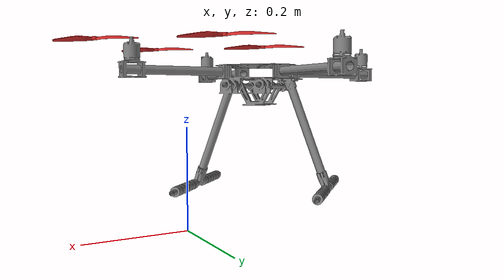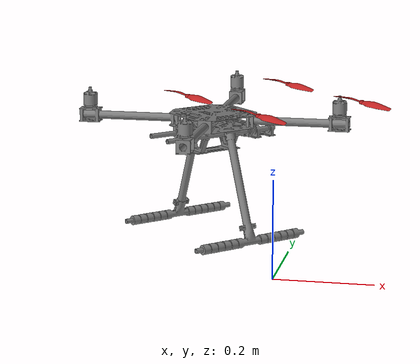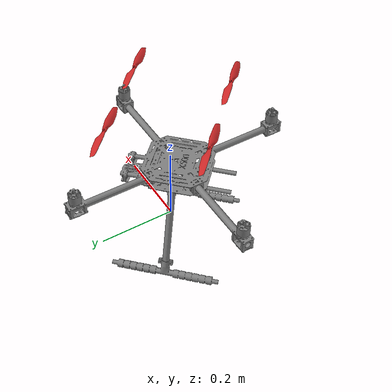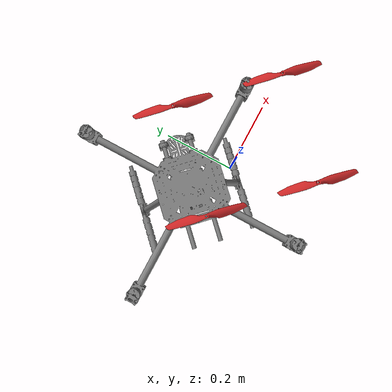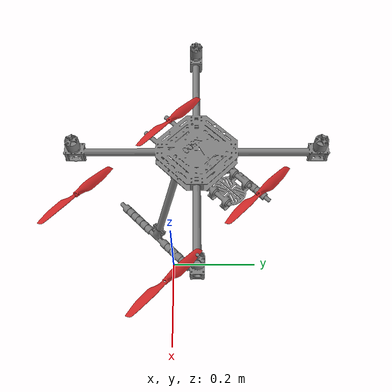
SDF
<?xml version="1.0" encoding="UTF-8"?>
<sdf version='1.9'>
  <model name='x500_base'>
    <pose>0 0 .24 0 0 0.785398</pose>
    <self_collide>false</self_collide>
    <static>false</static>
    <link name='base_link'>
      <pose>0 0 0 0 0 0</pose>
      <inertial>
        <pose>0 0 0 0 0 0</pose>
        <mass>1.2</mass>
        <inertia>
          <ixx>0.03</ixx>
          <ixy>0</ixy>
          <ixz>0</ixz>
          <iyy>0.03</iyy>
          <iyz>0</iyz>
          <izz>0.06</izz>
        </inertia>
      </inertial>
      <gravity>true</gravity>
      <velocity_decay />

      <visual name='base_visual'>
        <pose>-0.0482 0.1307 0 0 0 0</pose>
        <geometry>
          <mesh>
            <uri>model://x500_base/meshes/base_link.STL</uri>
            <scale>1 1 1</scale>
          </mesh>
        </geometry>
        <material>
          <ambient>0.5 0.5 0.5 1</ambient>
          <diffuse>0.5 0.5 0.5 1</diffuse>
        </material>
      </visual>
      <sensor name="air_pressure_sensor" type="air_pressure">
        <gz_frame_id>base_link</gz_frame_id>
        <always_on>1</always_on>
        <update_rate>50</update_rate>
        <air_pressure>
          <!-- Noise modeled after BMP390 -->
          <pressure>
            <noise type="gaussian">
              <mean>0</mean>
              <stddev>3</stddev>
            </noise>
          </pressure>
        </air_pressure>
      </sensor>
      <sensor name="magnetometer_sensor" type="magnetometer">
        <gz_frame_id>base_link</gz_frame_id>
        <always_on>1</always_on>
        <update_rate>100</update_rate>
        <magnetometer>
          <!-- TODO: update to fix units and coordinate system when we move past Harmonic -->
          <!-- See https://github.com/gazebosim/gz-sim/pull/2460 -->
          <!-- 3mgauss RMS: NOTE: noise is in tesla but sensor reports data in gauss -->
          <!-- Noise modeled after IIS2MDC -->
          <x>
            <noise type="gaussian">
              <stddev>0.0001</stddev>
            </noise>
          </x>
          <y>
            <noise type="gaussian">
              <stddev>0.0001</stddev>
            </noise>
          </y>
          <z>
            <noise type="gaussian">
              <stddev>0.0001</stddev>
            </noise>
          </z>
        </magnetometer>
      </sensor>
      <sensor name="imu_sensor" type="imu">
        <gz_frame_id>base_link</gz_frame_id>
        <always_on>1</always_on>
        <update_rate>250</update_rate>
        <imu>
          <angular_velocity>
            <!-- Noise modeled after IIM42653 -->
            <!-- 0.05 deg/s converted to rad/s -->
            <x>
              <noise type="gaussian">
                <mean>0.0</mean>
                <stddev>0.0008726646</stddev>
              </noise>
            </x>
            <y>
              <noise type="gaussian">
                <mean>0.0</mean>
                <stddev>0.0008726646</stddev>
              </noise>
            </y>
            <z>
              <noise type="gaussian">
                <mean>0.0</mean>
                <stddev>0.0008726646</stddev>
              </noise>
            </z>
          </angular_velocity>
          <linear_acceleration>
            <!-- Noise modeled after IIM42653 -->
            <!-- X & Y axis: 0.65 mg-rms converted to m/ss -->
            <x>
              <noise type="gaussian">
                <mean>0.0</mean>
                <stddev>0.00637</stddev>
              </noise>
            </x>
            <y>
              <noise type="gaussian">
                <mean>0.0</mean>
                <stddev>0.00637</stddev>
              </noise>
            </y>
            <!-- Z axis: 0.70 mg-rms converted to m/ss-->
            <z>
              <noise type="gaussian">
                <mean>0.0</mean>
                <stddev>0.00686</stddev>
              </noise>
            </z>
          </linear_acceleration>
        </imu>
      </sensor>
      <sensor name="navsat_sensor" type="navsat">
        <gz_frame_id>base_link</gz_frame_id>
        <always_on>1</always_on>
        <update_rate>30</update_rate>
      </sensor>
    </link>
    <link name="rotor_0">
      <gravity>true</gravity>
      <self_collide>false</self_collide>
      <velocity_decay />
      <pose>0.11900 -0.11900 0.11613 0 0 0</pose>
      <inertial>
        <mass>0.02</mass>
        <inertia>
  <ixx>5e-4</ixx>
  <iyy>5e-4</iyy>
  <izz>1e-3</izz>
</inertia>

      </inertial>
      <visual name="rotor_0_visual">
        <pose>0 0 0 1.57 0 0</pose>
        <geometry>
          <mesh>
            <scale>0.8461538461538461 0.8461538461538461 0.8461538461538461</scale>
            <uri>model://x500_base/meshes/prop1.STL</uri>
          </mesh>
        </geometry>
        <material>
          <script>
            <name>Gazebo/Red</name>
            <uri>file://media/materials/scripts/gazebo.material</uri>
          </script>
        </material>
      </visual>
    </link>
    <joint name="rotor_0_joint" type="revolute">
      <parent>base_link</parent>
      <child>rotor_0</child>
      <axis>
        <xyz>0 0 1</xyz>
        <limit>
          <lower>-1e+16</lower>
          <upper>1e+16</upper>
        </limit>
        <dynamics>
          <spring_reference>0</spring_reference>
          <spring_stiffness>0</spring_stiffness>
        </dynamics>
      </axis>
    </joint>
    <link name="rotor_1">
      <gravity>true</gravity>
      <self_collide>false</self_collide>
      <velocity_decay />
      <pose>-0.11905 0.11900 0.11613 0 0 0</pose>
      <inertial>
        <mass>0.02</mass>
        <inertia>
  <ixx>5e-4</ixx>
  <iyy>5e-4</iyy>
  <izz>1e-3</izz>
</inertia>

      </inertial>
      <visual name="rotor_1_visual">
        <pose>0 0 0 1.57 0 0</pose>
        <geometry>
          <mesh>
            <scale>0.8461538461538461 0.8461538461538461 0.8461538461538461</scale>
            <uri>model://x500_base/meshes/prop2.STL</uri>
          </mesh>
        </geometry>
        <material>
          <script>
            <name>Gazebo/Red</name>
            <uri>file://media/materials/scripts/gazebo.material</uri>
          </script>
        </material>
      </visual>
    </link>
    <joint name="rotor_1_joint" type="revolute">
      <parent>base_link</parent>
      <child>rotor_1</child>
      <axis>
        <xyz>0 0 1</xyz>
        <limit>
          <lower>-1e+16</lower>
          <upper>1e+16</upper>
        </limit>
        <dynamics>
          <spring_reference>0</spring_reference>
          <spring_stiffness>0</spring_stiffness>
        </dynamics>
      </axis>
    </joint>
    <link name="rotor_2">
      <gravity>true</gravity>
      <self_collide>false</self_collide>
      <velocity_decay />
      <pose>0.11900 0.11900 0.11613 0 0 0</pose>
      <inertial>
        <mass>0.02</mass>
        <inertia>
  <ixx>5e-4</ixx>
  <iyy>5e-4</iyy>
  <izz>1e-3</izz>
</inertia>

      </inertial>
      <visual name="rotor_2_visual">
        <pose>0 0 0 1.57 0 0</pose>
        <geometry>
          <mesh>
            <scale>0.8461538461538461 0.8461538461538461 0.8461538461538461</scale>
            <uri>model://x500_base/meshes/prop3.STL</uri>
          </mesh>
        </geometry>
        <material>
          <script>
            <name>Gazebo/Red</name>
            <uri>file://media/materials/scripts/gazebo.material</uri>
          </script>
        </material>
      </visual>
    </link>
    <joint name="rotor_2_joint" type="revolute">
      <parent>base_link</parent>
      <child>rotor_2</child>
      <axis>
        <xyz>0 0 1</xyz>
        <limit>
          <lower>-1e+16</lower>
          <upper>1e+16</upper>
        </limit>
        <dynamics>
          <spring_reference>0</spring_reference>
          <spring_stiffness>0</spring_stiffness>
        </dynamics>
      </axis>
    </joint>
    <link name="rotor_3">
      <gravity>true</gravity>
      <self_collide>false</self_collide>
      <velocity_decay />
      <pose>-0.11905 -0.11900 0.11613 0 0 0</pose>
      <inertial>
        <mass>0.02</mass>
        <inertia>
  <ixx>5e-4</ixx>
  <iyy>5e-4</iyy>
  <izz>1e-3</izz>
</inertia>

      </inertial>
      <visual name="rotor_3_visual">
        <pose>0 0 0 1.57 0 0</pose>
        <geometry>
          <mesh>
            <scale>0.8461538461538461 0.8461538461538461 0.8461538461538461</scale>
            <uri>model://x500_base/meshes/prop4.STL</uri>
          </mesh>
        </geometry>
        <material>
          <script>
            <name>Gazebo/Red</name>
            <uri>file://media/materials/scripts/gazebo.material</uri>
          </script>
        </material>
      </visual>
    </link>
    <joint name="rotor_3_joint" type="revolute">
      <parent>base_link</parent>
      <child>rotor_3</child>
      <axis>
        <xyz>0 0 1</xyz>
        <limit>
          <lower>-1e+16</lower>
          <upper>1e+16</upper>
        </limit>
        <dynamics>
          <spring_reference>0</spring_reference>
          <spring_stiffness>0</spring_stiffness>
        </dynamics>
      </axis>
    </joint>
  </model>
</sdf>
